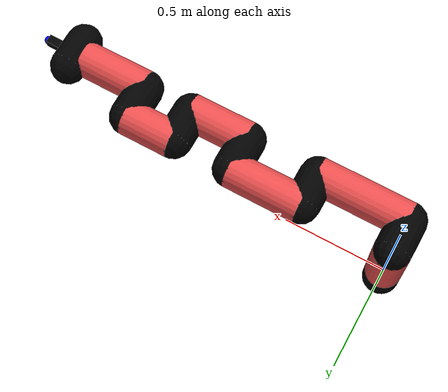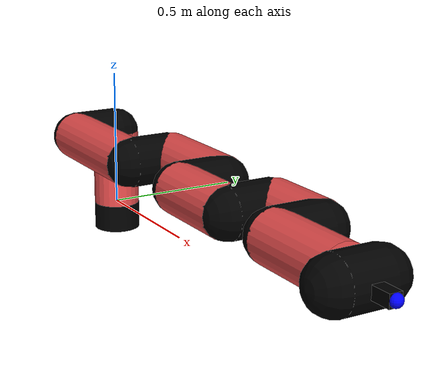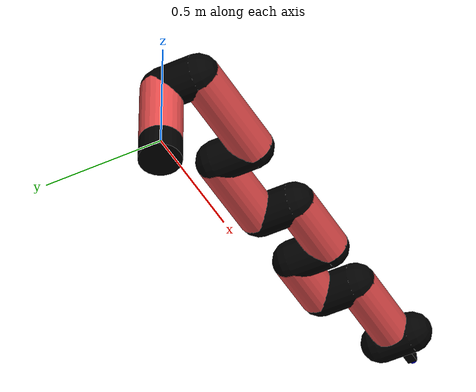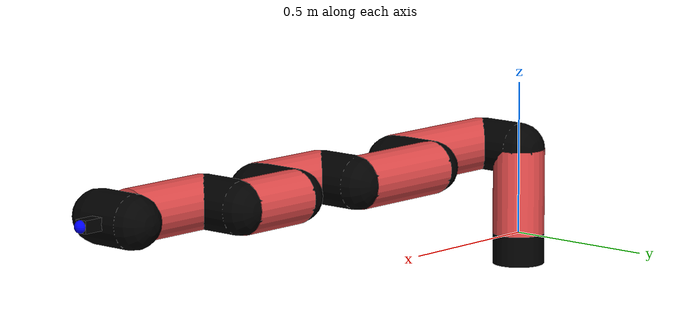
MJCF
<mujoco model="manipulator">
		<compiler angle="degree" coordinate="local" inertiafromgeom="auto" meshdir="meshes/"/>
		<option gravity="0 0 0" integrator="RK4" iterations="30" timestep="0.01"/>

		<default>
		<joint armature="1" limited="true" stiffness="10" damping="15" frictionloss="5.0"/>
		<geom conaffinity="1" condim="3" contype="1" friction=".5 .1 .1" margin="0.002"/>
		<motor ctrllimited="true"/>
		<position ctrllimited="true"/>
		</default>

		<asset>
		<texture builtin="gradient" height="100" rgb1="1.0 1.0 1.0" rgb2="1.0 1.0 1.0" type="skybox" width="100"/>
		<texture builtin="flat" height="32" name="arm_tex" rgb1="0.9 0.3 0.3" type="2d" width="32"/>
		<texture builtin="flat" height="32" name="gripper_tex" rgb1="0.0 0.0 0.0" type="cube" width="32"/>

		<material name="arm_mat" shininess="0.1" specular="0.1" texture="arm_tex"/>
		<material name="gripper_mat" shininess="1" specular="1" texture="gripper_tex"/>
		</asset>

		<worldbody>
		<light cutoff="45" diffuse=".8 .8 .8" dir="0 0.16 -1" directional="false" name="light" pos="0 -2.0 8.0" specular="0.3 0.3 0.3"/>

		<body name="base_link" pos="0 0 -0.1">
		<geom fromto="0 0 0 0 0 0.1" material="arm_mat" name="base_link" rgba="0.0 0.0 0.0 1" size="0.085" type="cylinder"/>
		</body>

		<body name="l1" pos="0 0 0">
<geom fromto="0 0 0 0 0 0.28" material="arm_mat" name="l1" rgba="0.9 0.3 0.3 1" size="0.085" type="cylinder"/>
<geom fromto="0 0 0.28 0 -0.16 0.28" material="arm_mat" name="l1_ex" rgba="0.0 0.0 0.0 1" size="0.085" type="capsule"/>
<joint axis="0 0 1" name="j1" pos="0 0 0" range="-90 90" damping="24.33" frictionloss="11.66"/>

<body name="l2" pos="0 -0.16 0.28">
<geom fromto="0 0 0 0.44 0 0" material="arm_mat" name="l2" rgba="0.9 0.3 0.3 1" size="0.085" type="cylinder"/>
<geom fromto="0.44 0 0 0.44 0.16 0" material="arm_mat" name="l2_ex" rgba="0.0 0.0 0.0 1" size="0.085" type="capsule"/>
<joint axis="0.0 1.0 0.0" name="j2" pos="0 0 0" range="-90 60" damping="26.75" frictionloss="11.92"/>

<body name="l3" pos="0.44 0.16 0">
<geom fromto="0 0 0 0.35 0 0" material="arm_mat" name="l3" rgba="0.9 0.3 0.3 1" size="0.085" type="cylinder"/>
<geom fromto="0.35 0 0 0.35 -0.16 0" material="arm_mat" name="l3_ex" rgba="0.0 0.0 0.0 1" size="0.085" type="capsule"/>
<joint axis="0.0 1.0 0.0" name="j3" pos="0 0 0" range="-30 60" damping="24.37" frictionloss="8.34"/>

<body name="l4" pos="0.35 -0.16 0">
<geom fromto="0 0 0 0.29 0 0" material="arm_mat" name="l4" rgba="0.9 0.3 0.3 1" size="0.085" type="cylinder"/>
<geom fromto="0.29 0 0 0.29 0.16 0" material="arm_mat" name="l4_ex" rgba="0.0 0.0 0.0 1" size="0.085" type="capsule"/>
<joint axis="0.0 1.0 0.0" name="j4" pos="0 0 0" range="-30 60" damping="24.55" frictionloss="8.48"/>

<body name="l5" pos="0.29 0.16 0">
<geom fromto="0 0 0 0.24 0 0" material="arm_mat" name="l5" rgba="0.9 0.3 0.3 1" size="0.085" type="cylinder"/>
<geom fromto="0.24 0 0 0.24 -0.16 0" material="arm_mat" name="l5_ex" rgba="0.0 0.0 0.0 1" size="0.085" type="capsule"/>
<joint axis="0.0 1.0 0.0" name="j5" pos="0 0 0" range="-30 60" damping="24.81" frictionloss="8.72"/>

<body name="l6" pos="0.24 -0.16 0">
<geom fromto="0 0 0 0.32 0 0" material="arm_mat" name="l6" rgba="0.9 0.3 0.3 1" size="0.085" type="cylinder"/>
<joint axis="0.0 1.0 0.0" name="j6" pos="0 0 0" range="-30 60" damping="37.48" frictionloss="10.37"/>

<body name="gripper" pos="0.32 0 0">
<geom fromto="0.05 -0.07 0 0.05 0.07 0" material="gripper_mat" name="gripper" rgba="0.0 0.0 0.0 1" size="0.085" type="capsule"/><joint axis="1 0 0" name="j7" pos="0 0 0" range="-90 90" damping="15" frictionloss="5.0"/><body name="finger" pos="0.1 0 0">
<geom fromto="0 0.0 0 0.1 0.0 0" material="gripper_mat" name="finger" rgba="0.0 0.0 0.0 1" size="0.020 0.06 0.06" type="box"/>
</body>
<site name="current" pos="0.2 0. 0.0" rgba="0. 0. 1.0 1" size="0.02" type="sphere"/>
</body>
</body>
</body>
</body>
</body>
</body>
</body>
</worldbody>
<actuator>
<motor ctrllimited="true" ctrlrange="-1.0 1.0" joint="j1" gear="74.41"/>
<motor ctrllimited="true" ctrlrange="-1.0 1.0" joint="j2" gear="85.16"/>
<motor ctrllimited="true" ctrlrange="-1.0 1.0" joint="j3" gear="76.26"/>
<motor ctrllimited="true" ctrlrange="-1.0 1.0" joint="j4" gear="63.17"/>
<motor ctrllimited="true" ctrlrange="-1.0 1.0" joint="j5" gear="72.06"/>
<motor ctrllimited="true" ctrlrange="-1.0 1.0" joint="j6" gear="79.16"/>
<motor ctrllimited="true" ctrlrange="-1.0 1.0" joint="j7" gear="80"/>
</actuator>
</mujoco>
